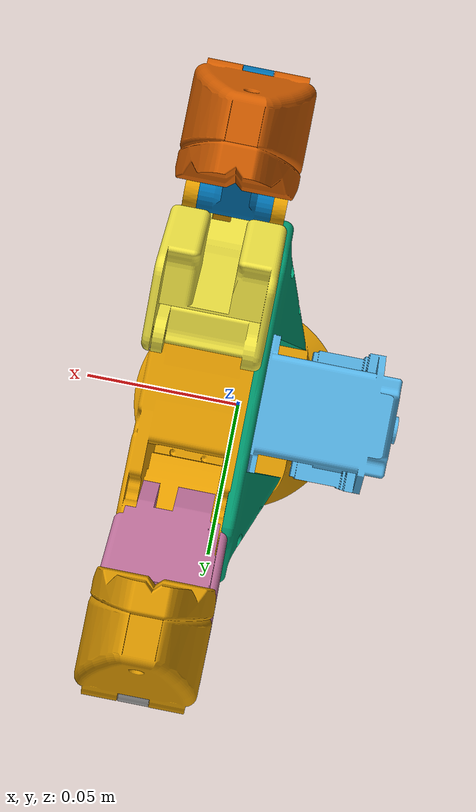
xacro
<?xml version="1.0"?>
<robot xmlns:xacro="http://www.ros.org/wiki/xacro" name="gripper_pincette">

  <xacro:include filename="$(find gripper_pincette)/description/urdf/gripper_pincette_description.urdf.xacro" />

  <!-- Import gripper_pincette ros2_control description -->
  <xacro:include filename="$(find gripper_pincette)/description/ros2_control/gripper_pincette_ign.ros2_control.xacro" />

  <xacro:gripper_pincette/>

  <!-- create link fixed to the "world" -->
  <link name="world"/>

  <!-- base_joint fixes base_link to the environment -->
  <joint name="base_joint" type="fixed">
    <parent link="world"/>
    <child link="structure"/>
    <origin xyz="0 0 0" rpy="0 0 0"/>
    <axis xyz="0 0 1"/>
  </joint>

  <xacro:gripper_pincette_ros2_control_ign name="gripper_pincette"/>

  <xacro:include filename="$(find gripper_pincette)/description/gazebo/gripper_pincette_ign.gazebo.xacro" />
  <xacro:gripper_pincette_gazebo_ign/>

</robot>

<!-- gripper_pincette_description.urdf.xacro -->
<robot xmlns:xacro="http://www.ros.org/wiki/xacro">

  <xacro:macro name="gripper_pincette">

  <!-- helper macro -->
  <xacro:include filename="$(find gripper_pincette)/description/urdf/inc/create_link.xacro"/>

  <xacro:create_link
      link_name="structure"
      xyz_offset="0 0 0"
      rpy_offset="0 0 0"
      mesh_package="gripper_pincette"
      mesh_name="structure"
      xyz_mass="0.015 0 0.05"
      mass="0.155"
      ixx="0.0003368"
      ixy="0"
      ixz="0"
      iyy="0.00023445"
      iyz="0"
      izz="0.00021125"
  />

  <xacro:create_link
      link_name="motor"
      xyz_offset="0 0 0"
      rpy_offset="0 0 0"
      mesh_package="gripper_pincette"
      mesh_name="motor"
      xyz_mass="-0.015 0 0.03"
      mass="0.155"
      ixx="0.0000578125"
      ixy="0"
      ixz="0"
      iyy="0.0000890125"
      iyz="0"
      izz="0.0000712"
  />

  <xacro:create_link
      link_name="palm_top_shell"
      xyz_offset="0 0 0"
      rpy_offset="0 0 0"
      mesh_package="gripper_pincette"
      mesh_name="palm_top_shell"
      xyz_mass="-0.03 0 0.002"
      mass="0.01"
      ixx="0.0000099075"
      ixy="0"
      ixz="0"
      iyy="0.00000462833"
      iyz="0"
      izz="0.00001416083"
  />

  <link name="right_finger_first_phalanx">
      <collision>
        <origin xyz="0.022 -0.021 0.002" rpy="0 0 -0.5"/>
        <geometry>
          <box size="0.05 0.027 0.032"/>
        </geometry>
      </collision>

      <visual>
        <origin xyz="0 0 0" rpy="0 0 0"/>
        <geometry>
          <mesh filename="file://$(find gripper_pincette)/description/meshes/visual/right_finger_first_phalanx.dae" />
        </geometry>
      </visual>

      <inertial>
        <origin xyz="0.02 -0.02 0.004" rpy="0 0 0"/>
        <mass value="0.02"/>
        <inertia ixx="0.00000267533" ixy="0.00000142249" ixz="0" iyy="0.00000988018" iyz="0" izz="0.00001059"/>
      </inertial>
  </link>

  <xacro:create_link
      link_name="right_external_rod"
      xyz_offset="0 0 0"
      rpy_offset="0 0 0"
      mesh_package="gripper_pincette"
      mesh_name="external_rod"
      xyz_mass="0.015 0.01 0"
      mass="0.005"
      ixx="4.31463415e-7"
      ixy="-6.10365854e-7"
      ixz="0"
      iyy="0.00000124756"
      iyz="0"
      izz="0.00000155121"
  />

  <link name="right_finger_last_phalanx">
      <collision>
        <origin xyz="0.018 0.014 0" rpy="0 0 0"/>
        <geometry>
          <box size="0.045 0.03 0.032"/>
        </geometry>
      </collision>

      <visual>
        <origin xyz="0 0 0" rpy="0 0 0"/>
        <geometry>
          <mesh filename="file://$(find gripper_pincette)/description/meshes/visual/finger_last_phalanx.dae" />
        </geometry>
      </visual>

      <inertial>
        <origin xyz="0.015 0.01 0" rpy="0 0 0"/>
        <mass value="0.015"/>
        <inertia ixx="0.00000289" ixy="0" ixz="0" iyy="0.00000457" iyz="0" izz="0.00000457"/>
      </inertial>
  </link>

    <link name="left_finger_first_phalanx">
      <collision>
        <origin xyz="0.022 0.020 0.002" rpy="0 0 0.5"/>
        <geometry>
          <box size="0.05 0.03 0.032"/>
        </geometry>
      </collision>

      <visual>
        <origin xyz="0 0 0" rpy="0 0 0"/>
        <geometry>
          <mesh filename="file://$(find gripper_pincette)/description/meshes/visual/left_finger_first_phalanx.dae" />
        </geometry>
      </visual>

      <inertial>
        <origin xyz="0.02 0.02 0.004" rpy="0 0 0"/>
        <mass value="0.02"/>
        <inertia ixx="0.00000267533" ixy="-0.00000142249" ixz="0" iyy="0.00000988018" iyz="0" izz="0.00001059"/>
      </inertial>
  </link>

  <xacro:create_link
      link_name="left_external_rod"
      xyz_offset="0 0 0"
      rpy_offset="0 0 0"
      mesh_package="gripper_pincette"
      mesh_name="external_rod"
      xyz_mass="0.015 0.01 0"
      mass="0.005"
      ixx="4.31463415e-7"
      ixy="-6.10365854e-7"
      ixz="0"
      iyy="0.00000124756"
      iyz="0"
      izz="0.00000155121"
  />

  <link name="left_finger_last_phalanx">
      <collision>
        <origin xyz="0.018 0.014 0" rpy="0 0 0"/>
        <geometry>
          <box size="0.045 0.03 0.032"/>
        </geometry>
      </collision>

      <visual>
        <origin xyz="0 0 0" rpy="0 0 0"/>
        <geometry>
          <mesh filename="file://$(find gripper_pincette)/description/meshes/visual/finger_last_phalanx.dae" />
        </geometry>
      </visual>

      <inertial>
        <origin xyz="0.015 0.01 0" rpy="0 0 0"/>
        <mass value="0.015"/>
        <inertia ixx="0.00000289" ixy="0" ixz="0" iyy="0.00000457" iyz="0" izz="0.00000457"/>
      </inertial>
  </link>

  <joint name="structure_motor" type="fixed">
    <parent link="structure"/>
    <child link="motor"/>
    <origin xyz="0.009 0 0.0825" rpy="0 -1.57 0"/>
  </joint>

  <joint name="structure_palm" type="fixed">
    <parent link="structure"/>
    <child link="palm_top_shell"/>
    <origin xyz="-0.002 0 0.101" rpy="0 -1.57 0"/>
  </joint>

  <joint name="right_finger_joint" type="revolute">
    <parent link="structure"/>
    <child link="right_finger_first_phalanx"/>
    <origin xyz="0.015 -0.038 0.1015" rpy="-1.569878 -0.520796 1.570340"/>
    <axis xyz="0 0 -1"/>
    <limit effort="1000.0" lower="0.0" upper="1.05" velocity="2.5"/>
  </joint>

  <joint name="right_external_rod_joint" type="revolute">
    <mimic joint="right_finger_joint" multiplier="1" offset="-1.05"/>
    <parent link="structure"/>
    <child link="right_external_rod"/>
    <origin xyz="0.012 -0.054 0.1069" rpy="3.14 -1.57 0"/>
    <axis xyz="0 0 1"/>
    <limit effort="1000.0" lower="-1.05" upper="0.0" velocity="2.5"/>
  </joint>

  <joint name="right_fingertip_joint" type="revolute">
    <mimic joint="right_finger_joint" multiplier="1" offset="-1.05"/>
    <parent link="right_external_rod"/>
    <child link="right_finger_last_phalanx"/>
    <origin xyz="0.0433 0.025 0" rpy="3.14 0 0"/>
    <axis xyz="0 0 1"/>
    <limit effort="1000.0" lower="-1.05" upper="0.0" velocity="2.5"/>
  </joint>

  <joint name="left_finger_joint" type="revolute">
    <mimic joint="right_finger_joint" multiplier="1" offset="-1.05"/>
    <parent link="structure"/>
    <child link="left_finger_first_phalanx"/>
    <origin xyz="0.015 0.038 0.1015" rpy="0 -1.57 0"/>
    <axis xyz="0 0 1"/>
    <limit effort="1000.0" lower="-1.05" upper="0.0" velocity="2.5"/>
  </joint>

  <joint name="left_external_rod_joint" type="revolute">
    <mimic joint="right_finger_joint" multiplier="1" offset="-1.05"/>
    <parent link="structure"/>
    <child link="left_external_rod"/>
    <origin xyz="0.012 0.054 0.1069" rpy="0 -1.57 0"/>
    <axis xyz="0 0 1"/>
    <limit effort="1000.0" lower="-1.05" upper="0.0" velocity="2.5"/>
  </joint>

  <joint name="left_fingertip_joint" type="revolute">
    <mimic joint="right_finger_joint" multiplier="1" offset="-1.05"/>
    <parent link="left_external_rod"/>
    <child link="left_finger_last_phalanx"/>
    <origin xyz="0.0433 0.025 0" rpy="3.14 0 0"/>
    <axis xyz="0 0 1"/>
    <limit effort="1000.0" lower="-1.05" upper="0.0" velocity="2.5"/>
  </joint>

</xacro:macro>

</robot>

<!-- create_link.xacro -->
<robot xmlns:xacro="http://wiki.ros.org/xacro">

  <xacro:macro name="create_link" params="
        link_name
        xyz_offset
        rpy_offset
        mesh_package
        mesh_name
        xyz_mass
        mass
        ixx
        ixy
        ixz
        iyy
        iyz
        izz">
    <link name="${link_name}">
      <visual>
        <origin xyz="${xyz_offset}" rpy="${rpy_offset}"/>
        <geometry>
          <mesh filename="file://$(find ${mesh_package})/description/meshes/visual/${mesh_name}.dae" />
        </geometry>
      </visual>
      <collision>
        <origin xyz="${xyz_offset}" rpy="${rpy_offset}"/>
        <geometry>
          <mesh filename="file://$(find ${mesh_package})/description/meshes/collision/${mesh_name}.stl"/>
        </geometry>
      </collision>
      <inertial>
        <origin xyz="${xyz_mass}" rpy="0 0 0"/>
        <mass value="${mass}"/>
        <inertia ixx="${ixx}" ixy="${ixy}" ixz="${ixz}" iyy="${iyy}" iyz="${iyz}" izz="${izz}"/>
      </inertial>
    </link>
  </xacro:macro>
</robot>
